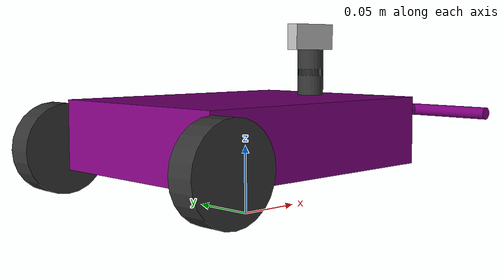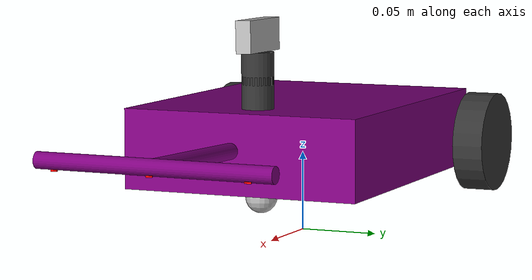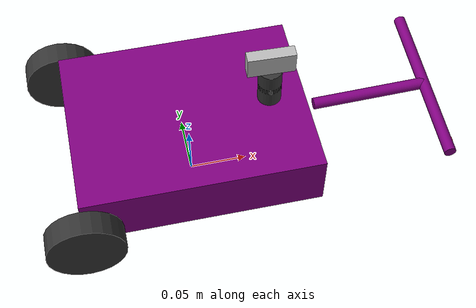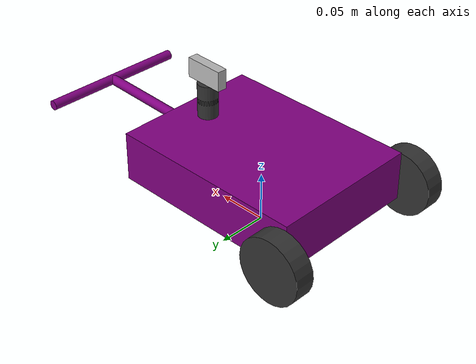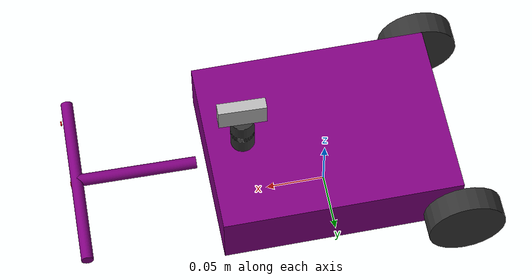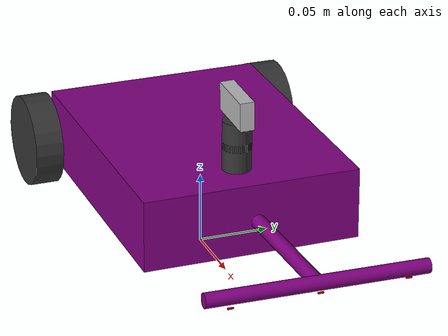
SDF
<?xml version="1.0" ?>
<sdf version="1.6">
<!--Copyright 2016-2022 The FEAGI Authors. All Rights Reserved.-->

<!--Licensed under the Apache License, Version 2.0 (the "License");-->
<!--you may not use this file except in compliance with the License.-->
<!--You may obtain a copy of the License at-->

<!--    http://www.apache.org/licenses/LICENSE-2.0-->

<!--Unless required by applicable law or agreed to in writing, software-->
<!--distributed under the License is distributed on an "AS IS" BASIS,-->
<!--WITHOUT WARRANTIES OR CONDITIONS OF ANY KIND, either express or implied.-->
<!--See the License for the specific language governing permissions and-->
<!--limitations under the License.-->
    <model name='smart_car'>
      <pose>0 0 0 0 0 0</pose>
    <!--     BODY PARTS        -->
        <link name='chassis'>
            <pose>0 0 0.06 0 0 0</pose>
            <inertial>
              <mass>100</mass>
              <inertia>
                <ixx>0.005</ixx>
                <ixy>0</ixy>
                <ixz>0</ixz>
                <iyy>0.005</iyy>
                <iyz>0</iyz>
                <izz>0.005</izz>
              </inertia>
            </inertial>
            <visual name='visual'>
              <geometry>
                <box>
                  <size>0.2 0.1524 0.05</size>
                </box>
              </geometry>
            <material>
              <ambient>0.8 0.0 0.5 0.0</ambient>
              <diffuse>0.5 0.0 0.5 1</diffuse>
              <specular>0.2 0.3 0.4 0.5</specular>
            </material>
            </visual>
            <collision name='collision'>
              <geometry>
                <box>
                  <size>0.2 0.1524 0.05</size>
                </box>
              </geometry>
            </collision>
          </link>

        <link name='rod_one'>
            <pose>0.160 0 0.065 0 -1.6 0</pose>
            <mass>0.5</mass>
            <visual name='visual'>
              <geometry>
                <cylinder>
                  <radius>0.005</radius>
                  <length>.1</length>
                </cylinder>
              </geometry>
              <material>
                <ambient>0.8 0.0 0.5 0.0</ambient>
                <diffuse>0.5 0.0 0.5 1</diffuse>
                <specular>0.2 0.3 0.4 0.5</specular>
              </material>
            </visual>
            <collision name='collision'>
              <geometry>
                <cylinder>
                  <radius>0.005</radius>
                  <length>.1</length>
                </cylinder>
              </geometry>
              <material>
                <ambient>0.8 0.0 0.5 0.0</ambient>
                <diffuse>0.5 0.0 0.5 1</diffuse>
                <specular>0.2 0.3 0.4 0.5</specular>
              </material>
            </collision>
          </link>

        <link name='second_rod'>
            <pose relative_to='rod_one'>0 0 -0.05 -1.6 0 0</pose>
            <mass>0.5</mass>
            <visual name='visual'>
              <geometry>
                <cylinder>
                  <radius>0.005</radius>
                  <length>.15</length>
                </cylinder>
              </geometry>
              <material>
                <ambient>0.8 0.0 0.5 0.0</ambient>
                <diffuse>0.5 0.0 0.5 1</diffuse>
                <specular>0.2 0.3 0.4 0.5</specular>
              </material>
            </visual>
            <collision name='collision'>
              <geometry>
                <cylinder>
                  <radius>0.005</radius>
                  <length>.15</length>
                </cylinder>
              </geometry>
            </collision>
          </link>

    <!--        Wheel section   -->

      <!--caster wheel-->
    <link name='caster'>
      <pose relative_to='chassis'>0.065 0 -0.03 0 0 0</pose>
        <inertial>
            <mass>20</mass>
          <inertia>
            <ixx>0.0329625</ixx>
            <iyy>0.0329625</iyy>
            <izz>0.0329625</izz>
            <ixy>0</ixy>
            <ixz>0</ixz>
            <iyz>0</iyz>
          </inertia>
        </inertial>
        <visual name='visual'>
            <geometry>
                <sphere>
                    <radius>0.01</radius>
                </sphere>
            </geometry>
        </visual>
        <collision name='collision'>
          <surface>
            <contact>
              <ode>
                <kp>10000000.0</kp>
                <kd>1.0</kd>
              </ode>
            </contact>
            <friction>
              <ode>
                <mu>0.67</mu>
                <fdir1>1 0 0</fdir1>
              </ode>
            </friction>
          </surface>
            <geometry>
                <sphere>
                    <radius>0.01</radius>
                </sphere>
            </geometry>
        </collision>
    </link>

    <link name='left_wheel'>
        <pose>-0.1 0.088 0.05 0 1.5707 1.5707</pose>
      <mass>20</mass>
        <inertial>
        <inertia>
          <ixx>0.3</ixx>
          <iyy>0.3</iyy>
          <izz>0.3</izz>
          <ixy>0</ixy>
          <ixz>0</ixz>
          <iyz>0</iyz>
        </inertia>
      </inertial>
        <visual name='visual'>
          <geometry>
            <cylinder>
              <radius>0.0325</radius>
              <length>.02</length>
            </cylinder>
          </geometry>
          <material>
            <ambient>0.2 0.2 0.2 1</ambient>
            <diffuse>0.2 0.2 0.2 1</diffuse>
            <specular>0.2 0.2 0.2 1</specular>
            <pbr>
                <metal>
                  <albedo_map>wheel_cover.png</albedo_map>
                  <normal_map>wheel_cover.png</normal_map>
                </metal>
            </pbr>
          </material>
        </visual>
        <collision name='collision'>
          <geometry>
            <cylinder>
              <radius>0.0325</radius>
              <length>.02</length>
            </cylinder>
          </geometry>
          <surface>
            <friction>
              <ode>
                <mu>0.67</mu>
                <fdir1>1 0 0</fdir1>
              </ode>
            </friction>
          </surface>
        </collision>
    </link>

      <link name='right_wheel'>
        <pose> -0.1 -0.088 0.05 0 1.5707 1.5707 </pose>
      <mass>20</mass>
        <inertial>
        <inertia>
          <ixx>0.3</ixx>
          <iyy>0.3</iyy>
          <izz>0.3</izz>
          <ixy>0</ixy>
          <ixz>0</ixz>
          <iyz>0</iyz>
        </inertia>
      </inertial>
        <visual name='visual'>
          <geometry>
            <cylinder>
              <radius>0.0325</radius>
              <length>.02</length>
            </cylinder>
          </geometry>
          <material>
            <ambient>0.2 0.2 0.2 1</ambient>
            <diffuse>0.2 0.2 0.2 1</diffuse>
            <specular>0.2 0.2 0.2 1</specular>
            <pbr>
                <metal>
                  <albedo_map>wheel_cover.png</albedo_map>
                  <normal_map>wheel_cover.png</normal_map>
                </metal>
            </pbr>
          </material>
        </visual>
        <collision name='collision'>
          <geometry>
            <cylinder>
              <radius>0.0325</radius>
              <length>.02</length>
            </cylinder>
          </geometry>
          <surface>
            <friction>
              <ode>
                <mu>0.63</mu>
                <fdir1>1 0 0</fdir1>
              </ode>
            </friction>
          </surface>
        </collision>
      </link>

    <!--        Servo section   -->

      <link name='head'>
          <pose relative_to="chassis">0.07 0 0.035 0 0 0</pose>
        <inertial>
        <mass>0.06442</mass>
        <inertia>
          <ixx>7.4993e-05</ixx>
          <ixy>1.57e-09</ixy>
          <ixz>-1.834e-08</ixz>
          <iyy>7.6e-05</iyy>
          <iyz>-5.295e-08</iyz>
          <izz>5.53373e-06</izz>
        </inertia>
        </inertial>
        <visual name='visual'>
          <geometry>
          <cylinder>
            <radius>0.01</radius>
            <length>0.02</length>
          </cylinder>
          </geometry>
          <material>
            <ambient>0.2 0.2 0.2 1</ambient>
            <diffuse>0.2 0.2 0.2 1</diffuse>
            <specular>0.2 0.2 0.2 1</specular>
          </material>
        </visual>
      <gravity>1</gravity>
      <velocity_decay/>
      <self_collide>0</self_collide>
        <collision name='collision'>
          <geometry>
          <cylinder>
            <radius>0.01</radius>
            <length>0.02</length>
          </cylinder>
          </geometry>
        </collision>
      </link>

      <link name='head2'>
        <pose relative_to="head">0 0 0.015 0 0 -1.6</pose>
        <inertial>
          <mass>0.03</mass>
          <inertia>
            <ixx>0.001</ixx>
            <ixy>0</ixy>
            <ixz>0</ixz>
            <iyy>0.001</iyy>
            <iyz>0</iyz>
            <izz>0.001</izz>
          </inertia>
        </inertial>
        <visual name='visual'>
          <geometry>
          <cylinder>
            <radius>0.01</radius>
            <length>0.02</length>
          </cylinder>
          </geometry>
          <material>
            <ambient>0.2 0.2 0.2 1</ambient>
            <diffuse>0.2 0.2 0.2 1</diffuse>
            <specular>0.2 0.2 0.2 1</specular>
          </material>
        </visual>
        <collision name='collision'>
          <geometry>
          <cylinder>
            <radius>0.01</radius>
            <length>0.02</length>
          </cylinder>
          </geometry>
        </collision>
      </link>

    <!--    sensor section   -->

      <link name='sensor'>
      <pose relative_to='head2'>0 0 0.0201 0 -1.55 0</pose>
     <inertial>
          <mass>0.02</mass>
          <inertia>
            <ixx>0.001</ixx>
            <ixy>0</ixy>
            <ixz>0</ixz>
            <iyy>0.001</iyy>
            <iyz>0</iyz>
            <izz>0.001</izz>
          </inertia>
        </inertial>
      <visual name='visual'>
        <pose>0 0 0 0 0 0</pose>
        <geometry>
          <box>
            <size>0.02 0.04 0.01</size>
          </box>
        </geometry>
      </visual>
    <collision name="collision">
        <pose >0 0 0 0 0 0</pose>
        <geometry>
          <box>
            <size>0.02 0.04 0.01</size>
          </box>
        </geometry>
      </collision>
      <frame name="lidar_frame" attached_to='sensor'>
        </frame>
      <sensor name='gpu_lidar' type='gpu_lidar'>
          <always_on>1</always_on>
          <visualize>true</visualize>
          <topic>ultrasonic0</topic>
          <update_rate>20</update_rate>
          <lidar>
              <scan>
                  <vertical>
                    <samples>5</samples>
                    <resolution>1</resolution>
                    <min_angle>0.00</min_angle>
                    <max_angle>0.25</max_angle>
                  </vertical>
              </scan>
          <range>
            <min>0.120000</min>
            <max>4</max>
            <resolution>0.015000</resolution>
          </range>
          <noise>
            <type>gaussian</type>
            <mean>0.0</mean>
            <stddev>0.01</stddev>
          </noise>
        </lidar>
    </sensor>
    </link>

      <link name='right_IR'>
      <pose>0.215 0.060 0.062 0 1.6 0</pose>
     <inertial>
          <mass>0.01</mass>
          <inertia>
            <ixx>0.126164</ixx>
            <ixy>0</ixy>
            <ixz>0</ixz>
            <iyy>0.416519</iyy>
            <iyz>0</iyz>
            <izz>0.481014</izz>
          </inertia>
        </inertial>
      <visual name='visual'>
        <pose>0 0 0 0 0 0</pose>
        <geometry>
          <box>
            <size>0.001 0.004 0.001</size>
          </box>
        </geometry>
        <material>
            <ambient>1 0 0 1</ambient>
            <diffuse>1 0 0 1</diffuse>
            <specular>0.1 0.1 0.1 1</specular>
            <emissive>0 0 0 0</emissive>
      </material>
      </visual>
        <collision name='collision'>
            <pose>0 0 0 0 0 0</pose>
            <geometry>
              <box>
                <size>0.001 0.004 0.001</size>
              </box>
            </geometry>
        </collision>
      <sensor name="rgbd_camera" type="rgbd_camera">
          <update_rate>100</update_rate>
          <visualize>true</visualize>
          <always_on>1</always_on>
          <topic>IR0</topic>
          <camera>
            <horizontal_fov>0.1</horizontal_fov>
            <image>
              <width>1</width>
              <height>1</height>
              <format>L_INT8</format>
              <anti-aliasing>1</anti-aliasing>
            </image>
            <clip>
              <near>0.02</near>
              <far>10.0</far>
            </clip>
          </camera>
      </sensor>
    </link>

      <link name='left_IR'>
      <pose>0.215 -0.060 0.062 0 1.6 0</pose>
     <inertial>
          <mass>0.01</mass>
          <inertia>
            <ixx>0.126164</ixx>
            <ixy>0</ixy>
            <ixz>0</ixz>
            <iyy>0.416519</iyy>
            <iyz>0</iyz>
            <izz>0.481014</izz>
          </inertia>
        </inertial>
      <visual name='visual'>
        <pose>0 0 0 0 0 0</pose>
        <geometry>
          <box>
            <size>0.001 0.004 0.001</size>
          </box>
        </geometry>
        <material>
            <ambient>1 0 0 1</ambient>
            <diffuse>1 0 0 1</diffuse>
            <specular>0.1 0.1 0.1 1</specular>
            <emissive>0 0 0 0</emissive>
      </material>
      </visual>
        <collision name='collision'>
            <pose>0 0 0 0 0 0</pose>
            <geometry>
              <box>
                <size>0.001 0.004 0.001</size>
              </box>
            </geometry>
        </collision>
        <sensor name="rgbd_camera" type="rgbd_camera">
          <update_rate>100</update_rate>
          <topic>IR2</topic>
          <camera>
            <horizontal_fov>0.1</horizontal_fov>
            <image>
              <width>1</width>
              <height>1</height>
              <format>L_INT8</format>
              <anti-aliasing>1</anti-aliasing>
            </image>
            <clip>
              <near>0.02</near>
              <far>10.0</far>
            </clip>
          </camera>
        </sensor>
    </link>

      <link name='middle_IR'>
      <pose>0.215 0 0.062 0 1.6 0</pose>
      <mass>0.01</mass>
      <visual name='visual'>
        <pose>0 0 0 0 0 0</pose>
        <geometry>
          <box>
            <size>0.001 0.004 0.001</size>
          </box>
        </geometry>
        <material>
            <ambient>1 0 0 1</ambient>
            <diffuse>1 0 0 1</diffuse>
            <specular>0.1 0.1 0.1 1</specular>
            <emissive>0 0 0 0</emissive>
      </material>
      </visual>
        <collision name='collision'>
            <pose>0 0 0 0 0 0</pose>
            <geometry>
              <box>
                <size>0.001 0.004 0.001</size>
              </box>
            </geometry>
        </collision>
      <sensor name="rgbd_camera" type="rgbd_camera">
          <update_rate>100</update_rate>
          <topic>IR1</topic>
          <camera>
            <horizontal_fov>0.1</horizontal_fov>
            <image>
              <width>1</width>
              <height>1</height>
              <format>L_INT8</format>
              <anti-aliasing>1</anti-aliasing>
            </image>
            <clip>
              <near>0.02</near>
              <far>10.0</far>
            </clip>
          </camera>
      </sensor>
    </link>

    <!--        Joint section        -->

    <joint name='left_wheel_joint' type='revolute'>
        <parent>chassis</parent>
        <child>left_wheel</child>
        <axis>
          <xyz>0 1 0</xyz>
        <limit>
            <lower>-1.79769e+308</lower>    <!--negative infinity-->
            <upper>1.79769e+308</upper>     <!--positive infinity-->
        </limit>
        <dynamics>
          <damping>1</damping>
          <friction>1</friction>
          <spring_reference>0</spring_reference>
          <spring_stiffness>0</spring_stiffness>
        </dynamics>
        <use_parent_model_frame>1</use_parent_model_frame>
        </axis>
      <physics>
        <ode>
          <implicit_spring_damper>1</implicit_spring_damper>
          <cfm_damping>1</cfm_damping>
          <limit>
            <cfm>0</cfm>
            <erp>0.2</erp>
          </limit>
        </ode>
      </physics>
      </joint>
      <!--      M2 topic-->
    <plugin
          filename="ignition-gazebo-joint-position-controller-system"
          name="ignition::gazebo::systems::JointPositionController">
          <joint_name>left_wheel_joint</joint_name>
                <topic>M0</topic>
    </plugin>

    <joint name='right_wheel_joint' type='revolute'>
        <parent>chassis</parent>
        <child>right_wheel</child>
        <axis>
          <xyz>0 1 0</xyz>
        <limit>
            <lower>-1.79769e+308</lower>    <!--negative infinity-->
            <upper>1.79769e+308</upper>     <!--positive infinity-->
        </limit>
        <dynamics>
          <damping>1</damping>
          <friction>1</friction>
          <spring_reference>0</spring_reference>
          <spring_stiffness>0</spring_stiffness>
        </dynamics>
        <use_parent_model_frame>1</use_parent_model_frame>
        </axis>
      <physics>
        <ode>
          <implicit_spring_damper>1</implicit_spring_damper>
          <cfm_damping>1</cfm_damping>
          <limit>
            <cfm>0</cfm>
            <erp>0.2</erp>
          </limit>
        </ode>
      </physics>
      </joint>
      <!--      M3 topic-->
    <plugin
          filename="ignition-gazebo-joint-position-controller-system"
          name="ignition::gazebo::systems::JointPositionController">
          <joint_name>right_wheel_joint</joint_name>
                <topic>M1</topic>
    </plugin>

      <joint name='caster_wheel' type='ball'>
    <parent>chassis</parent>
    <child>caster</child>
    </joint>

    <joint name='ultrasonic' type='fixed'>
        <parent>head2</parent>
        <child>sensor</child>
      </joint>

    <joint name='head_attach' type='revolute'>
        <parent>chassis</parent>
        <child>head</child>
        <axis>
          <xyz>0 0 1</xyz>
          <limit>
            <lower>0.1</lower>
            <upper>3.1</upper>
          </limit>
          <dynamics>
          <damping>1</damping>
          <friction>0</friction>
          <spring_reference>0</spring_reference>
          <spring_stiffness>0</spring_stiffness>
        </dynamics>
        <use_parent_model_frame>1</use_parent_model_frame>
        </axis>
      <physics>
        <ode>
          <implicit_spring_damper>1</implicit_spring_damper>
          <cfm_damping>1</cfm_damping>
          <limit>
            <cfm>0</cfm>
            <erp>0.2</erp>
          </limit>
        </ode>
      </physics>
      </joint>
            <!--      S0 topic-->
    <plugin
          filename="ignition-gazebo-joint-position-controller-system"
          name="ignition::gazebo::systems::JointPositionController">
          <joint_name>head_attach</joint_name>
                <topic>S0</topic>
                <p_gain>10</p_gain>
                <i_gain>0.1</i_gain>
                <d_gain>0.01</d_gain>
                <i_max>1</i_max>
                <i_min>-1</i_min>
                <cmd_max>1000</cmd_max>
                <cmd_min>-1000</cmd_min>
    </plugin>

    <joint name='head_attach2' type='revolute'>
    <parent>head</parent>
    <child>head2</child>
    <axis>
      <xyz>1 0 0</xyz>
      <limit>
        <lower>-0.2</lower>
        <upper>1.6</upper>
      </limit>
          <dynamics>
          <damping>1</damping>
          <friction>0</friction>
          <spring_reference>0</spring_reference>
          <spring_stiffness>0</spring_stiffness>
        </dynamics>
        <use_parent_model_frame>1</use_parent_model_frame>
        </axis>
      <physics>
        <ode>
          <implicit_spring_damper>1</implicit_spring_damper>
          <cfm_damping>1</cfm_damping>
          <limit>
            <cfm>0</cfm>
            <erp>0.2</erp>
          </limit>
        </ode>
      </physics>
  </joint>
            <!--      S1 topic-->
      <plugin
          filename="ignition-gazebo-joint-position-controller-system"
          name="ignition::gazebo::systems::JointPositionController">
          <joint_name>head_attach2</joint_name>
                <topic>S1</topic>
                <p_gain>10</p_gain>
                <i_gain>0.1</i_gain>
                <d_gain>0.01</d_gain>
                <i_max>1</i_max>
                <i_min>-1</i_min>
                <cmd_max>1000</cmd_max>
                <cmd_min>-1000</cmd_min>
    </plugin>

  <joint name='rod1' type='fixed'>
    <parent>chassis</parent>
    <child>rod_one</child>
  </joint>

    <joint name='board' type='fixed'>
    <parent>rod_one</parent>
    <child>second_rod</child>
  </joint>

   <joint name='IR_right' type='fixed'>
    <parent>second_rod</parent>
    <child>right_IR</child>
  </joint>

   <joint name='IR_left' type='fixed'>
    <parent>second_rod</parent>
    <child>left_IR</child>
  </joint>

   <joint name='IR_middle' type='fixed'>
    <parent>second_rod</parent>
    <child>middle_IR</child>
  </joint>

    <plugin filename="ignition-gazebo-linearbatteryplugin-system"
        name="ignition::gazebo::systems::LinearBatteryPlugin">
        <!--Li-ion battery spec from LIR18650 datasheet-->
        <battery_name>linear_battery</battery_name>
        <voltage>8.40</voltage>
        <open_circuit_voltage_constant_coef>8.40</open_circuit_voltage_constant_coef>
        <open_circuit_voltage_linear_coef>-2.0</open_circuit_voltage_linear_coef>
        <initial_charge>2.5</initial_charge>
        <capacity>2.5</capacity>
        <resistance>0.07</resistance>
        <smooth_current_tau>2.0</smooth_current_tau>
        <enable_recharge>false</enable_recharge>
        <!-- charging I = c / t, discharging I = P / V,
          charging I should be > discharging I -->
        <!-- Consumer-specific -->
        <power_load>0.2</power_load>
        <start_on_motion>true</start_on_motion>
      </plugin>

  <plugin
      filename="ignition-gazebo-sensors-system"
      name="ignition::gazebo::systems::Sensors">
      <render_engine>ogre2</render_engine>
  </plugin>

  </model>

</sdf>
